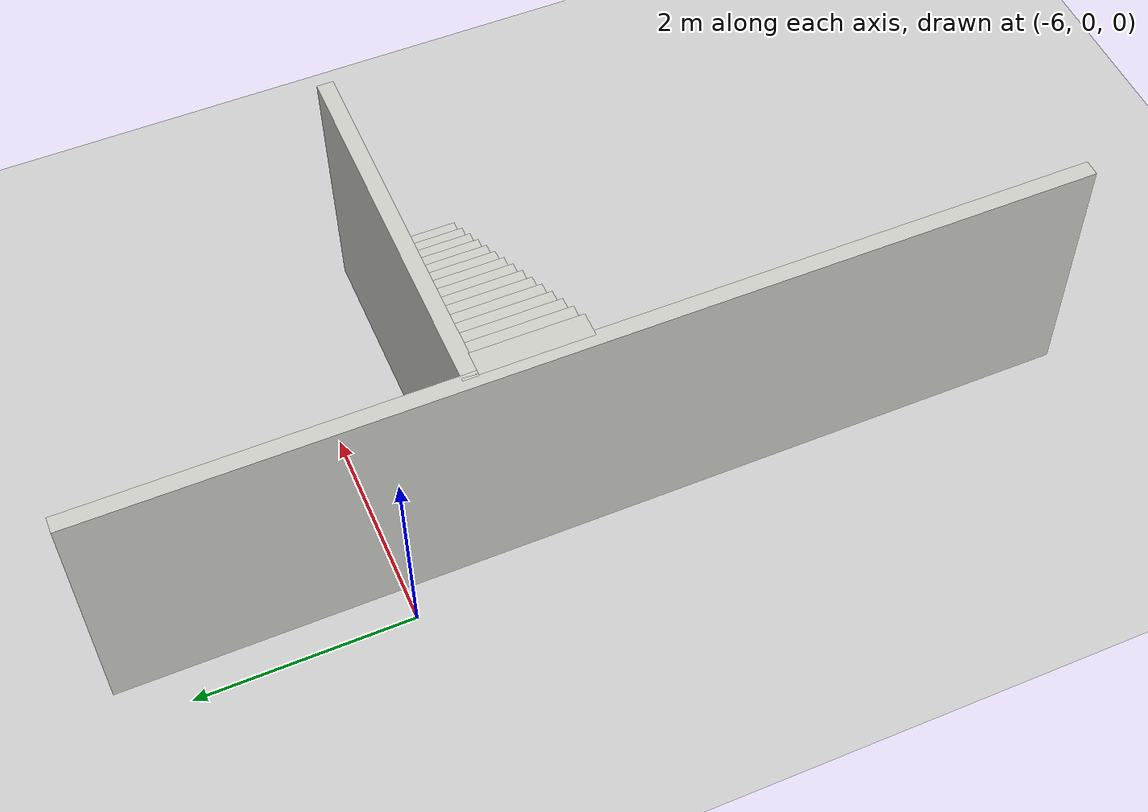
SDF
<sdf version="1.6">
 <world name="default">
  <model name="ground_plane">
   <static>1</static>
   <link name="link">
    <collision name="collision">
     <geometry><plane><normal>0 0 1</normal><size>100 100</size></plane></geometry>
     <surface>
      <contact><collide_bitmask>65535</collide_bitmask></contact>
      <friction><ode><mu>100</mu><mu2>50</mu2></ode></friction>
     </surface>
    </collision>
    <visual name="visual">
     <cast_shadows>0</cast_shadows>
     <geometry><plane><normal>0 0 1</normal><size>100 100</size></plane></geometry>
     <material>
      <script><uri>file://media/materials/scripts/gazebo.material</uri><name>Gazebo/Grey</name></script>
     </material>
    </visual>
   </link>
  </model>
  <model name="house">
   <link name="Stairs_0">
    <inertial>
     <mass>1</mass>
     <inertia><ixx>1</ixx><ixy>0</ixy><ixz>0</ixz><iyy>1</iyy><iyz>0</iyz><izz>1</izz></inertia>
    </inertial>
    <visual name="Stairs_0_Visual_12">
     <pose>-5.11434 -1.37452 2.08333 0 0 -1.5708</pose>
     <geometry><box><size>1 0.233333 0.166667</size></box></geometry>
     <material>
      <script><uri>file://media/materials/scripts/gazebo.material</uri><name>Gazebo/CeilingTiled</name></script>
      <ambient>1 1 1 1</ambient>
      <shader type="pixel"><normal_map>__default__</normal_map></shader>
     </material>
     <meta><layer>0</layer></meta>
    </visual>
    <visual name="Stairs_0_Visual_6">
     <pose>-3.71434 -1.37452 1.08333 0 0 -1.5708</pose>
     <geometry><box><size>1 0.233333 0.166667</size></box></geometry>
     <material>
      <script><uri>file://media/materials/scripts/gazebo.material</uri><name>Gazebo/CeilingTiled</name></script>
      <ambient>1 1 1 1</ambient>
      <shader type="pixel"><normal_map>__default__</normal_map></shader>
     </material>
     <meta><layer>0</layer></meta>
    </visual>
    <visual name="Stairs_0_Visual_13">
     <pose>-5.34767 -1.37452 2.25 0 0 -1.5708</pose>
     <geometry><box><size>1 0.233333 0.166667</size></box></geometry>
     <material>
      <script><uri>file://media/materials/scripts/gazebo.material</uri><name>Gazebo/CeilingTiled</name></script>
      <ambient>1 1 1 1</ambient>
      <shader type="pixel"><normal_map>__default__</normal_map></shader>
     </material>
     <meta><layer>0</layer></meta>
    </visual>
    <visual name="Stairs_0_Visual_9">
     <pose>-4.41434 -1.37452 1.58333 0 0 -1.5708</pose>
     <geometry><box><size>1 0.233333 0.166667</size></box></geometry>
     <material>
      <script><uri>file://media/materials/scripts/gazebo.material</uri><name>Gazebo/CeilingTiled</name></script>
      <ambient>1 1 1 1</ambient>
      <shader type="pixel"><normal_map>__default__</normal_map></shader>
     </material>
     <meta><layer>0</layer></meta>
    </visual>
    <visual name="Stairs_0_Visual_7">
     <pose>-3.94767 -1.37452 1.25 0 0 -1.5708</pose>
     <geometry><box><size>1 0.233333 0.166667</size></box></geometry>
     <material>
      <script><uri>file://media/materials/scripts/gazebo.material</uri><name>Gazebo/CeilingTiled</name></script>
      <ambient>1 1 1 1</ambient>
      <shader type="pixel"><normal_map>__default__</normal_map></shader>
     </material>
     <meta><layer>0</layer></meta>
    </visual>
    <visual name="Stairs_0_Visual_0">
     <pose>-2.31434 -1.37452 0.083333 0 0 -1.5708</pose>
     <geometry><box><size>1 0.233333 0.166667</size></box></geometry>
     <material>
      <script><uri>file://media/materials/scripts/gazebo.material</uri><name>Gazebo/CeilingTiled</name></script>
      <ambient>1 1 1 1</ambient>
      <shader type="pixel"><normal_map>__default__</normal_map></shader>
     </material>
     <meta><layer>0</layer></meta>
    </visual>
    <visual name="Stairs_0_Visual_3">
     <pose>-3.01434 -1.37452 0.583333 0 0 -1.5708</pose>
     <geometry><box><size>1 0.233333 0.166667</size></box></geometry>
     <material>
      <script><uri>file://media/materials/scripts/gazebo.material</uri><name>Gazebo/CeilingTiled</name></script>
      <ambient>1 1 1 1</ambient>
      <shader type="pixel"><normal_map>__default__</normal_map></shader>
     </material>
     <meta><layer>0</layer></meta>
    </visual>
    <visual name="Stairs_0_Visual_4">
     <pose>-3.24767 -1.37452 0.75 0 0 -1.5708</pose>
     <geometry><box><size>1 0.233333 0.166667</size></box></geometry>
     <material>
      <script><uri>file://media/materials/scripts/gazebo.material</uri><name>Gazebo/CeilingTiled</name></script>
      <ambient>1 1 1 1</ambient>
      <shader type="pixel"><normal_map>__default__</normal_map></shader>
     </material>
     <meta><layer>0</layer></meta>
    </visual>
    <visual name="Stairs_0_Visual_1">
     <pose>-2.54767 -1.37452 0.25 0 0 -1.5708</pose>
     <geometry><box><size>1 0.233333 0.166667</size></box></geometry>
     <material>
      <script><uri>file://media/materials/scripts/gazebo.material</uri><name>Gazebo/CeilingTiled</name></script>
      <ambient>1 1 1 1</ambient>
      <shader type="pixel"><normal_map>__default__</normal_map></shader>
     </material>
     <meta><layer>0</layer></meta>
    </visual>
    <visual name="Stairs_0_Visual_11">
     <pose>-4.88101 -1.37452 1.91667 0 0 -1.5708</pose>
     <geometry><box><size>1 0.233333 0.166667</size></box></geometry>
     <material>
      <script><uri>file://media/materials/scripts/gazebo.material</uri><name>Gazebo/CeilingTiled</name></script>
      <ambient>1 1 1 1</ambient>
      <shader type="pixel"><normal_map>__default__</normal_map></shader>
     </material>
     <meta><layer>0</layer></meta>
    </visual>
    <visual name="Stairs_0_Visual_10">
     <pose>-4.64767 -1.37452 1.75 0 0 -1.5708</pose>
     <geometry><box><size>1 0.233333 0.166667</size></box></geometry>
     <material>
      <script><uri>file://media/materials/scripts/gazebo.material</uri><name>Gazebo/CeilingTiled</name></script>
      <ambient>1 1 1 1</ambient>
      <shader type="pixel"><normal_map>__default__</normal_map></shader>
     </material>
     <meta><layer>0</layer></meta>
    </visual>
    <visual name="Stairs_0_Visual_14">
     <pose>-5.58101 -1.37452 2.41667 0 0 -1.5708</pose>
     <geometry><box><size>1 0.233333 0.166667</size></box></geometry>
     <material>
      <script><uri>file://media/materials/scripts/gazebo.material</uri><name>Gazebo/CeilingTiled</name></script>
      <ambient>1 1 1 1</ambient>
      <shader type="pixel"><normal_map>__default__</normal_map></shader>
     </material>
     <meta><layer>0</layer></meta>
    </visual>
    <visual name="Stairs_0_Visual_5">
     <pose>-3.48101 -1.37452 0.916667 0 0 -1.5708</pose>
     <geometry><box><size>1 0.233333 0.166667</size></box></geometry>
     <material>
      <script><uri>file://media/materials/scripts/gazebo.material</uri><name>Gazebo/CeilingTiled</name></script>
      <ambient>1 1 1 1</ambient>
      <shader type="pixel"><normal_map>__default__</normal_map></shader>
     </material>
     <meta><layer>0</layer></meta>
    </visual>
    <visual name="Stairs_0_Visual_8">
     <pose>-4.181 -1.37452 1.41667 0 0 -1.5708</pose>
     <geometry><box><size>1 0.233333 0.166667</size></box></geometry>
     <material>
      <script><uri>file://media/materials/scripts/gazebo.material</uri><name>Gazebo/CeilingTiled</name></script>
      <ambient>1 1 1 1</ambient>
      <shader type="pixel"><normal_map>__default__</normal_map></shader>
     </material>
     <meta><layer>0</layer></meta>
    </visual>
    <visual name="Stairs_0_Visual_2">
     <pose>-2.781 -1.37452 0.416667 0 0 -1.5708</pose>
     <geometry><box><size>1 0.233333 0.166667</size></box></geometry>
     <material>
      <script><uri>file://media/materials/scripts/gazebo.material</uri><name>Gazebo/CeilingTiled</name></script>
      <ambient>1 1 1 1</ambient>
      <shader type="pixel"><normal_map>__default__</normal_map></shader>
     </material>
     <meta><layer>0</layer></meta>
    </visual>
    <collision name="Stairs_0_Collision_5">
     <pose>-3.48101 -1.37452 0.916667 0 0 -1.5708</pose>
     <geometry><box><size>1 0.233333 0.166667</size></box></geometry>
     <surface>
      <friction>
       <ode><mu>1</mu><mu2>1</mu2><fdir1>0 0 0</fdir1><slip1>0</slip1><slip2>0</slip2></ode>
       <torsional>
        <coefficient>1</coefficient>
        <patch_radius>0</patch_radius>
        <surface_radius>0</surface_radius>
        <use_patch_radius>1</use_patch_radius>
        <ode><slip>0</slip></ode>
       </torsional>
      </friction>
      <bounce><restitution_coefficient>0</restitution_coefficient><threshold>1e+06</threshold></bounce>
      <contact>
       <collide_without_contact>0</collide_without_contact>
       <collide_without_contact_bitmask>1</collide_without_contact_bitmask>
       <collide_bitmask>1</collide_bitmask>
       <ode>
        <soft_cfm>0</soft_cfm>
        <soft_erp>0.2</soft_erp>
        <kp>1e+13</kp>
        <kd>1</kd>
        <max_vel>0.01</max_vel>
        <min_depth>0</min_depth>
       </ode>
       <bullet>
        <split_impulse>1</split_impulse>
        <split_impulse_penetration_threshold>-0.01</split_impulse_penetration_threshold>
        <soft_cfm>0</soft_cfm>
        <soft_erp>0.2</soft_erp>
        <kp>1e+13</kp>
        <kd>1</kd>
       </bullet>
      </contact>
     </surface>
    </collision>
    <collision name="Stairs_0_Collision_3">
     <pose>-3.01434 -1.37452 0.583333 0 0 -1.5708</pose>
     <geometry><box><size>1 0.233333 0.166667</size></box></geometry>
     <surface>
      <friction>
       <ode><mu>1</mu><mu2>1</mu2><fdir1>0 0 0</fdir1><slip1>0</slip1><slip2>0</slip2></ode>
       <torsional>
        <coefficient>1</coefficient>
        <patch_radius>0</patch_radius>
        <surface_radius>0</surface_radius>
        <use_patch_radius>1</use_patch_radius>
        <ode><slip>0</slip></ode>
       </torsional>
      </friction>
      <bounce><restitution_coefficient>0</restitution_coefficient><threshold>1e+06</threshold></bounce>
      <contact>
       <collide_without_contact>0</collide_without_contact>
       <collide_without_contact_bitmask>1</collide_without_contact_bitmask>
       <collide_bitmask>1</collide_bitmask>
       <ode>
        <soft_cfm>0</soft_cfm>
        <soft_erp>0.2</soft_erp>
        <kp>1e+13</kp>
        <kd>1</kd>
        <max_vel>0.01</max_vel>
        <min_depth>0</min_depth>
       </ode>
       <bullet>
        <split_impulse>1</split_impulse>
        <split_impulse_penetration_threshold>-0.01</split_impulse_penetration_threshold>
        <soft_cfm>0</soft_cfm>
        <soft_erp>0.2</soft_erp>
        <kp>1e+13</kp>
        <kd>1</kd>
       </bullet>
      </contact>
     </surface>
    </collision>
    <collision name="Stairs_0_Collision_4">
     <pose>-3.24767 -1.37452 0.75 0 0 -1.5708</pose>
     <geometry><box><size>1 0.233333 0.166667</size></box></geometry>
     <surface>
      <friction>
       <ode><mu>1</mu><mu2>1</mu2><fdir1>0 0 0</fdir1><slip1>0</slip1><slip2>0</slip2></ode>
       <torsional>
        <coefficient>1</coefficient>
        <patch_radius>0</patch_radius>
        <surface_radius>0</surface_radius>
        <use_patch_radius>1</use_patch_radius>
        <ode><slip>0</slip></ode>
       </torsional>
      </friction>
      <bounce><restitution_coefficient>0</restitution_coefficient><threshold>1e+06</threshold></bounce>
      <contact>
       <collide_without_contact>0</collide_without_contact>
       <collide_without_contact_bitmask>1</collide_without_contact_bitmask>
       <collide_bitmask>1</collide_bitmask>
       <ode>
        <soft_cfm>0</soft_cfm>
        <soft_erp>0.2</soft_erp>
        <kp>1e+13</kp>
        <kd>1</kd>
        <max_vel>0.01</max_vel>
        <min_depth>0</min_depth>
       </ode>
       <bullet>
        <split_impulse>1</split_impulse>
        <split_impulse_penetration_threshold>-0.01</split_impulse_penetration_threshold>
        <soft_cfm>0</soft_cfm>
        <soft_erp>0.2</soft_erp>
        <kp>1e+13</kp>
        <kd>1</kd>
       </bullet>
      </contact>
     </surface>
    </collision>
    <collision name="Stairs_0_Collision_8">
     <pose>-4.181 -1.37452 1.41667 0 0 -1.5708</pose>
     <geometry><box><size>1 0.233333 0.166667</size></box></geometry>
     <surface>
      <friction>
       <ode><mu>1</mu><mu2>1</mu2><fdir1>0 0 0</fdir1><slip1>0</slip1><slip2>0</slip2></ode>
       <torsional>
        <coefficient>1</coefficient>
        <patch_radius>0</patch_radius>
        <surface_radius>0</surface_radius>
        <use_patch_radius>1</use_patch_radius>
        <ode><slip>0</slip></ode>
       </torsional>
      </friction>
      <bounce><restitution_coefficient>0</restitution_coefficient><threshold>1e+06</threshold></bounce>
      <contact>
       <collide_without_contact>0</collide_without_contact>
       <collide_without_contact_bitmask>1</collide_without_contact_bitmask>
       <collide_bitmask>1</collide_bitmask>
       <ode>
        <soft_cfm>0</soft_cfm>
        <soft_erp>0.2</soft_erp>
        <kp>1e+13</kp>
        <kd>1</kd>
        <max_vel>0.01</max_vel>
        <min_depth>0</min_depth>
       </ode>
       <bullet>
        <split_impulse>1</split_impulse>
        <split_impulse_penetration_threshold>-0.01</split_impulse_penetration_threshold>
        <soft_cfm>0</soft_cfm>
        <soft_erp>0.2</soft_erp>
        <kp>1e+13</kp>
        <kd>1</kd>
       </bullet>
      </contact>
     </surface>
    </collision>
    <collision name="Stairs_0_Collision_14">
     <pose>-5.58101 -1.37452 2.41667 0 0 -1.5708</pose>
     <geometry><box><size>1 0.233333 0.166667</size></box></geometry>
     <surface>
      <friction>
       <ode><mu>1</mu><mu2>1</mu2><fdir1>0 0 0</fdir1><slip1>0</slip1><slip2>0</slip2></ode>
       <torsional>
        <coefficient>1</coefficient>
        <patch_radius>0</patch_radius>
        <surface_radius>0</surface_radius>
        <use_patch_radius>1</use_patch_radius>
        <ode><slip>0</slip></ode>
       </torsional>
      </friction>
      <bounce><restitution_coefficient>0</restitution_coefficient><threshold>1e+06</threshold></bounce>
      <contact>
       <collide_without_contact>0</collide_without_contact>
       <collide_without_contact_bitmask>1</collide_without_contact_bitmask>
       <collide_bitmask>1</collide_bitmask>
       <ode>
        <soft_cfm>0</soft_cfm>
        <soft_erp>0.2</soft_erp>
        <kp>1e+13</kp>
        <kd>1</kd>
        <max_vel>0.01</max_vel>
        <min_depth>0</min_depth>
       </ode>
       <bullet>
        <split_impulse>1</split_impulse>
        <split_impulse_penetration_threshold>-0.01</split_impulse_penetration_threshold>
        <soft_cfm>0</soft_cfm>
        <soft_erp>0.2</soft_erp>
        <kp>1e+13</kp>
        <kd>1</kd>
       </bullet>
      </contact>
     </surface>
    </collision>
    <collision name="Stairs_0_Collision_12">
     <pose>-5.11434 -1.37452 2.08333 0 0 -1.5708</pose>
     <geometry><box><size>1 0.233333 0.166667</size></box></geometry>
     <surface>
      <friction>
       <ode><mu>1</mu><mu2>1</mu2><fdir1>0 0 0</fdir1><slip1>0</slip1><slip2>0</slip2></ode>
       <torsional>
        <coefficient>1</coefficient>
        <patch_radius>0</patch_radius>
        <surface_radius>0</surface_radius>
        <use_patch_radius>1</use_patch_radius>
        <ode><slip>0</slip></ode>
       </torsional>
      </friction>
      <bounce><restitution_coefficient>0</restitution_coefficient><threshold>1e+06</threshold></bounce>
      <contact>
       <collide_without_contact>0</collide_without_contact>
       <collide_without_contact_bitmask>1</collide_without_contact_bitmask>
       <collide_bitmask>1</collide_bitmask>
       <ode>
        <soft_cfm>0</soft_cfm>
        <soft_erp>0.2</soft_erp>
        <kp>1e+13</kp>
        <kd>1</kd>
        <max_vel>0.01</max_vel>
        <min_depth>0</min_depth>
       </ode>
       <bullet>
        <split_impulse>1</split_impulse>
        <split_impulse_penetration_threshold>-0.01</split_impulse_penetration_threshold>
        <soft_cfm>0</soft_cfm>
        <soft_erp>0.2</soft_erp>
        <kp>1e+13</kp>
        <kd>1</kd>
       </bullet>
      </contact>
     </surface>
    </collision>
    <collision name="Stairs_0_Collision_2">
     <pose>-2.781 -1.37452 0.416667 0 0 -1.5708</pose>
     <geometry><box><size>1 0.233333 0.166667</size></box></geometry>
     <surface>
      <friction>
       <ode><mu>1</mu><mu2>1</mu2><fdir1>0 0 0</fdir1><slip1>0</slip1><slip2>0</slip2></ode>
       <torsional>
        <coefficient>1</coefficient>
        <patch_radius>0</patch_radius>
        <surface_radius>0</surface_radius>
        <use_patch_radius>1</use_patch_radius>
        <ode><slip>0</slip></ode>
       </torsional>
      </friction>
      <bounce><restitution_coefficient>0</restitution_coefficient><threshold>1e+06</threshold></bounce>
      <contact>
       <collide_without_contact>0</collide_without_contact>
       <collide_without_contact_bitmask>1</collide_without_contact_bitmask>
       <collide_bitmask>1</collide_bitmask>
       <ode>
        <soft_cfm>0</soft_cfm>
        <soft_erp>0.2</soft_erp>
        <kp>1e+13</kp>
        <kd>1</kd>
        <max_vel>0.01</max_vel>
        <min_depth>0</min_depth>
       </ode>
       <bullet>
        <split_impulse>1</split_impulse>
        <split_impulse_penetration_threshold>-0.01</split_impulse_penetration_threshold>
        <soft_cfm>0</soft_cfm>
        <soft_erp>0.2</soft_erp>
        <kp>1e+13</kp>
        <kd>1</kd>
       </bullet>
      </contact>
     </surface>
    </collision>
    <collision name="Stairs_0_Collision_9">
     <pose>-4.41434 -1.37452 1.58333 0 0 -1.5708</pose>
     <geometry><box><size>1 0.233333 0.166667</size></box></geometry>
     <surface>
      <friction>
       <ode><mu>1</mu><mu2>1</mu2><fdir1>0 0 0</fdir1><slip1>0</slip1><slip2>0</slip2></ode>
       <torsional>
        <coefficient>1</coefficient>
        <patch_radius>0</patch_radius>
        <surface_radius>0</surface_radius>
        <use_patch_radius>1</use_patch_radius>
        <ode><slip>0</slip></ode>
       </torsional>
      </friction>
      <bounce><restitution_coefficient>0</restitution_coefficient><threshold>1e+06</threshold></bounce>
      <contact>
       <collide_without_contact>0</collide_without_contact>
       <collide_without_contact_bitmask>1</collide_without_contact_bitmask>
       <collide_bitmask>1</collide_bitmask>
       <ode>
        <soft_cfm>0</soft_cfm>
        <soft_erp>0.2</soft_erp>
        <kp>1e+13</kp>
        <kd>1</kd>
        <max_vel>0.01</max_vel>
        <min_depth>0</min_depth>
       </ode>
       <bullet>
        <split_impulse>1</split_impulse>
        <split_impulse_penetration_threshold>-0.01</split_impulse_penetration_threshold>
        <soft_cfm>0</soft_cfm>
        <soft_erp>0.2</soft_erp>
        <kp>1e+13</kp>
        <kd>1</kd>
       </bullet>
      </contact>
     </surface>
    </collision>
    <collision name="Stairs_0_Collision_6">
     <pose>-3.71434 -1.37452 1.08333 0 0 -1.5708</pose>
     <geometry><box><size>1 0.233333 0.166667</size></box></geometry>
     <surface>
      <friction>
       <ode><mu>1</mu><mu2>1</mu2><fdir1>0 0 0</fdir1><slip1>0</slip1><slip2>0</slip2></ode>
       <torsional>
        <coefficient>1</coefficient>
        <patch_radius>0</patch_radius>
        <surface_radius>0</surface_radius>
        <use_patch_radius>1</use_patch_radius>
        <ode><slip>0</slip></ode>
       </torsional>
      </friction>
      <bounce><restitution_coefficient>0</restitution_coefficient><threshold>1e+06</threshold></bounce>
      <contact>
       <collide_without_contact>0</collide_without_contact>
       <collide_without_contact_bitmask>1</collide_without_contact_bitmask>
       <collide_bitmask>1</collide_bitmask>
       <ode>
        <soft_cfm>0</soft_cfm>
        <soft_erp>0.2</soft_erp>
        <kp>1e+13</kp>
        <kd>1</kd>
        <max_vel>0.01</max_vel>
        <min_depth>0</min_depth>
       </ode>
       <bullet>
        <split_impulse>1</split_impulse>
        <split_impulse_penetration_threshold>-0.01</split_impulse_penetration_threshold>
        <soft_cfm>0</soft_cfm>
        <soft_erp>0.2</soft_erp>
        <kp>1e+13</kp>
        <kd>1</kd>
       </bullet>
      </contact>
     </surface>
    </collision>
    <collision name="Stairs_0_Collision_13">
     <pose>-5.34767 -1.37452 2.25 0 0 -1.5708</pose>
     <geometry><box><size>1 0.233333 0.166667</size></box></geometry>
     <surface>
      <friction>
       <ode><mu>1</mu><mu2>1</mu2><fdir1>0 0 0</fdir1><slip1>0</slip1><slip2>0</slip2></ode>
       <torsional>
        <coefficient>1</coefficient>
        <patch_radius>0</patch_radius>
        <surface_radius>0</surface_radius>
        <use_patch_radius>1</use_patch_radius>
        <ode><slip>0</slip></ode>
       </torsional>
      </friction>
      <bounce><restitution_coefficient>0</restitution_coefficient><threshold>1e+06</threshold></bounce>
      <contact>
       <collide_without_contact>0</collide_without_contact>
       <collide_without_contact_bitmask>1</collide_without_contact_bitmask>
       <collide_bitmask>1</collide_bitmask>
       <ode>
        <soft_cfm>0</soft_cfm>
        <soft_erp>0.2</soft_erp>
        <kp>1e+13</kp>
        <kd>1</kd>
        <max_vel>0.01</max_vel>
        <min_depth>0</min_depth>
       </ode>
       <bullet>
        <split_impulse>1</split_impulse>
        <split_impulse_penetration_threshold>-0.01</split_impulse_penetration_threshold>
        <soft_cfm>0</soft_cfm>
        <soft_erp>0.2</soft_erp>
        <kp>1e+13</kp>
        <kd>1</kd>
       </bullet>
      </contact>
     </surface>
    </collision>
    <collision name="Stairs_0_Collision_7">
     <pose>-3.94767 -1.37452 1.25 0 0 -1.5708</pose>
     <geometry><box><size>1 0.233333 0.166667</size></box></geometry>
     <surface>
      <friction>
       <ode><mu>1</mu><mu2>1</mu2><fdir1>0 0 0</fdir1><slip1>0</slip1><slip2>0</slip2></ode>
       <torsional>
        <coefficient>1</coefficient>
        <patch_radius>0</patch_radius>
        <surface_radius>0</surface_radius>
        <use_patch_radius>1</use_patch_radius>
        <ode><slip>0</slip></ode>
       </torsional>
      </friction>
      <bounce><restitution_coefficient>0</restitution_coefficient><threshold>1e+06</threshold></bounce>
      <contact>
       <collide_without_contact>0</collide_without_contact>
       <collide_without_contact_bitmask>1</collide_without_contact_bitmask>
       <collide_bitmask>1</collide_bitmask>
       <ode>
        <soft_cfm>0</soft_cfm>
        <soft_erp>0.2</soft_erp>
        <kp>1e+13</kp>
        <kd>1</kd>
        <max_vel>0.01</max_vel>
        <min_depth>0</min_depth>
       </ode>
       <bullet>
        <split_impulse>1</split_impulse>
        <split_impulse_penetration_threshold>-0.01</split_impulse_penetration_threshold>
        <soft_cfm>0</soft_cfm>
        <soft_erp>0.2</soft_erp>
        <kp>1e+13</kp>
        <kd>1</kd>
       </bullet>
      </contact>
     </surface>
    </collision>
    <collision name="Stairs_0_Collision_0">
     <pose>-2.31434 -1.37452 0.083333 0 0 -1.5708</pose>
     <geometry><box><size>1 0.233333 0.166667</size></box></geometry>
     <surface>
      <friction>
       <ode><mu>1</mu><mu2>1</mu2><fdir1>0 0 0</fdir1><slip1>0</slip1><slip2>0</slip2></ode>
       <torsional>
        <coefficient>1</coefficient>
        <patch_radius>0</patch_radius>
        <surface_radius>0</surface_radius>
        <use_patch_radius>1</use_patch_radius>
        <ode><slip>0</slip></ode>
       </torsional>
      </friction>
      <bounce><restitution_coefficient>0</restitution_coefficient><threshold>1e+06</threshold></bounce>
      <contact>
       <collide_without_contact>0</collide_without_contact>
       <collide_without_contact_bitmask>1</collide_without_contact_bitmask>
       <collide_bitmask>1</collide_bitmask>
       <ode>
        <soft_cfm>0</soft_cfm>
        <soft_erp>0.2</soft_erp>
        <kp>1e+13</kp>
        <kd>1</kd>
        <max_vel>0.01</max_vel>
        <min_depth>0</min_depth>
       </ode>
       <bullet>
        <split_impulse>1</split_impulse>
        <split_impulse_penetration_threshold>-0.01</split_impulse_penetration_threshold>
        <soft_cfm>0</soft_cfm>
        <soft_erp>0.2</soft_erp>
        <kp>1e+13</kp>
        <kd>1</kd>
       </bullet>
      </contact>
     </surface>
    </collision>
    <collision name="Stairs_0_Collision_11">
     <pose>-4.88101 -1.37452 1.91667 0 0 -1.5708</pose>
     <geometry><box><size>1 0.233333 0.166667</size></box></geometry>
     <surface>
      <friction>
       <ode><mu>1</mu><mu2>1</mu2><fdir1>0 0 0</fdir1><slip1>0</slip1><slip2>0</slip2></ode>
       <torsional>
        <coefficient>1</coefficient>
        <patch_radius>0</patch_radius>
        <surface_radius>0</surface_radius>
        <use_patch_radius>1</use_patch_radius>
        <ode><slip>0</slip></ode>
       </torsional>
      </friction>
      <bounce><restitution_coefficient>0</restitution_coefficient><threshold>1e+06</threshold></bounce>
      <contact>
       <collide_without_contact>0</collide_without_contact>
       <collide_without_contact_bitmask>1</collide_without_contact_bitmask>
       <collide_bitmask>1</collide_bitmask>
       <ode>
        <soft_cfm>0</soft_cfm>
        <soft_erp>0.2</soft_erp>
        <kp>1e+13</kp>
        <kd>1</kd>
        <max_vel>0.01</max_vel>
        <min_depth>0</min_depth>
       </ode>
       <bullet>
        <split_impulse>1</split_impulse>
        <split_impulse_penetration_threshold>-0.01</split_impulse_penetration_threshold>
        <soft_cfm>0</soft_cfm>
        <soft_erp>0.2</soft_erp>
        <kp>1e+13</kp>
        <kd>1</kd>
       </bullet>
      </contact>
     </surface>
    </collision>
    <collision name="Stairs_0_Collision_1">
     <pose>-2.54767 -1.37452 0.25 0 0 -1.5708</pose>
     <geometry><box><size>1 0.233333 0.166667</size></box></geometry>
     <surface>
      <friction>
       <ode><mu>1</mu><mu2>1</mu2><fdir1>0 0 0</fdir1><slip1>0</slip1><slip2>0</slip2></ode>
       <torsional>
        <coefficient>1</coefficient>
        <patch_radius>0</patch_radius>
        <surface_radius>0</surface_radius>
        <use_patch_radius>1</use_patch_radius>
        <ode><slip>0</slip></ode>
       </torsional>
      </friction>
      <bounce><restitution_coefficient>0</restitution_coefficient><threshold>1e+06</threshold></bounce>
      <contact>
       <collide_without_contact>0</collide_without_contact>
       <collide_without_contact_bitmask>1</collide_without_contact_bitmask>
       <collide_bitmask>1</collide_bitmask>
       <ode>
        <soft_cfm>0</soft_cfm>
        <soft_erp>0.2</soft_erp>
        <kp>1e+13</kp>
        <kd>1</kd>
        <max_vel>0.01</max_vel>
        <min_depth>0</min_depth>
       </ode>
       <bullet>
        <split_impulse>1</split_impulse>
        <split_impulse_penetration_threshold>-0.01</split_impulse_penetration_threshold>
        <soft_cfm>0</soft_cfm>
        <soft_erp>0.2</soft_erp>
        <kp>1e+13</kp>
        <kd>1</kd>
       </bullet>
      </contact>
     </surface>
    </collision>
    <collision name="Stairs_0_Collision_10">
     <pose>-4.64767 -1.37452 1.75 0 0 -1.5708</pose>
     <geometry><box><size>1 0.233333 0.166667</size></box></geometry>
     <surface>
      <friction>
       <ode><mu>1</mu><mu2>1</mu2><fdir1>0 0 0</fdir1><slip1>0</slip1><slip2>0</slip2></ode>
       <torsional>
        <coefficient>1</coefficient>
        <patch_radius>0</patch_radius>
        <surface_radius>0</surface_radius>
        <use_patch_radius>1</use_patch_radius>
        <ode><slip>0</slip></ode>
       </torsional>
      </friction>
      <bounce><restitution_coefficient>0</restitution_coefficient><threshold>1e+06</threshold></bounce>
      <contact>
       <collide_without_contact>0</collide_without_contact>
       <collide_without_contact_bitmask>1</collide_without_contact_bitmask>
       <collide_bitmask>1</collide_bitmask>
       <ode>
        <soft_cfm>0</soft_cfm>
        <soft_erp>0.2</soft_erp>
        <kp>1e+13</kp>
        <kd>1</kd>
        <max_vel>0.01</max_vel>
        <min_depth>0</min_depth>
       </ode>
       <bullet>
        <split_impulse>1</split_impulse>
        <split_impulse_penetration_threshold>-0.01</split_impulse_penetration_threshold>
        <soft_cfm>0</soft_cfm>
        <soft_erp>0.2</soft_erp>
        <kp>1e+13</kp>
        <kd>1</kd>
       </bullet>
      </contact>
     </surface>
    </collision>
   </link>
   <link name="Wall_0">
    <pose>-5.72496 -1.92194 0 0 -0 1.5708</pose>
    <visual name="Wall_0_Visual">
     <pose>0 0 1.25 0 -0 0</pose>
     <geometry><box><size>9 0.15 2.5</size></box></geometry>
     <material>
      <script><uri>file://media/materials/scripts/gazebo.material</uri><name>Gazebo/CeilingTiled</name></script>
      <ambient>1 1 1 1</ambient>
      <shader type="pixel"/>
     </material>
     <meta><layer>0</layer></meta>
    </visual>
    <collision name="Wall_0_Collision">
     <pose>0 0 1.25 0 -0 0</pose>
     <geometry><box><size>9 0.15 2.5</size></box></geometry>
     <surface>
      <friction>
       <ode><mu>1</mu><mu2>1</mu2><fdir1>0 0 0</fdir1><slip1>0</slip1><slip2>0</slip2></ode>
       <torsional>
        <coefficient>1</coefficient>
        <patch_radius>0</patch_radius>
        <surface_radius>0</surface_radius>
        <use_patch_radius>1</use_patch_radius>
        <ode><slip>0</slip></ode>
       </torsional>
      </friction>
      <bounce><restitution_coefficient>0</restitution_coefficient><threshold>1e+06</threshold></bounce>
      <contact>
       <collide_without_contact>0</collide_without_contact>
       <collide_without_contact_bitmask>1</collide_without_contact_bitmask>
       <collide_bitmask>1</collide_bitmask>
       <ode>
        <soft_cfm>0</soft_cfm>
        <soft_erp>0.2</soft_erp>
        <kp>1e+13</kp>
        <kd>1</kd>
        <max_vel>0.01</max_vel>
        <min_depth>0</min_depth>
       </ode>
       <bullet>
        <split_impulse>1</split_impulse>
        <split_impulse_penetration_threshold>-0.01</split_impulse_penetration_threshold>
        <soft_cfm>0</soft_cfm>
        <soft_erp>0.2</soft_erp>
        <kp>1e+13</kp>
        <kd>1</kd>
       </bullet>
      </contact>
     </surface>
    </collision>
   </link>
   <link name="Wall_9">
    <pose>-3.9558 -0.806976 0 0 -0 2e-05</pose>
    <visual name="Wall_9_Visual">
     <pose>0 0 1.25 0 -0 0</pose>
     <geometry><box><size>3.5 0.15 2.5</size></box></geometry>
     <material>
      <script><uri>file://media/materials/scripts/gazebo.material</uri><name>Gazebo/CeilingTiled</name></script>
      <ambient>1 1 1 1</ambient>
      <shader type="pixel"/>
     </material>
     <meta><layer>0</layer></meta>
    </visual>
    <collision name="Wall_9_Collision">
     <pose>0 0 1.25 0 -0 0</pose>
     <geometry><box><size>3.5 0.15 2.5</size></box></geometry>
     <surface>
      <friction>
       <ode><mu>1</mu><mu2>1</mu2><fdir1>0 0 0</fdir1><slip1>0</slip1><slip2>0</slip2></ode>
       <torsional>
        <coefficient>1</coefficient>
        <patch_radius>0</patch_radius>
        <surface_radius>0</surface_radius>
        <use_patch_radius>1</use_patch_radius>
        <ode><slip>0</slip></ode>
       </torsional>
      </friction>
      <bounce><restitution_coefficient>0</restitution_coefficient><threshold>1e+06</threshold></bounce>
      <contact>
       <collide_without_contact>0</collide_without_contact>
       <collide_without_contact_bitmask>1</collide_without_contact_bitmask>
       <collide_bitmask>1</collide_bitmask>
       <ode>
        <soft_cfm>0</soft_cfm>
        <soft_erp>0.2</soft_erp>
        <kp>1e+13</kp>
        <kd>1</kd>
        <max_vel>0.01</max_vel>
        <min_depth>0</min_depth>
       </ode>
       <bullet>
        <split_impulse>1</split_impulse>
        <split_impulse_penetration_threshold>-0.01</split_impulse_penetration_threshold>
        <soft_cfm>0</soft_cfm>
        <soft_erp>0.2</soft_erp>
        <kp>1e+13</kp>
        <kd>1</kd>
       </bullet>
      </contact>
     </surface>
    </collision>
   </link>
   <static>1</static>
   <pose>0.117199 0.016408 0 0 -0 0</pose>
  </model>
 </world>
</sdf>
